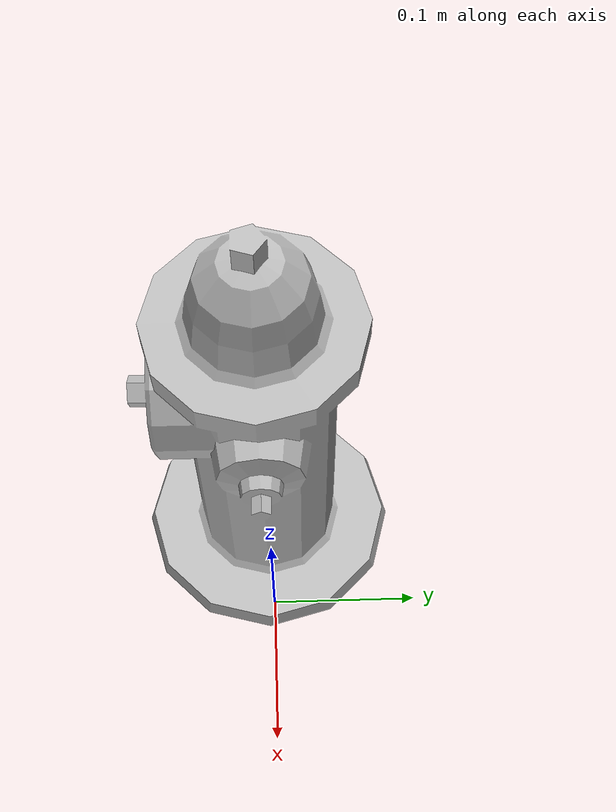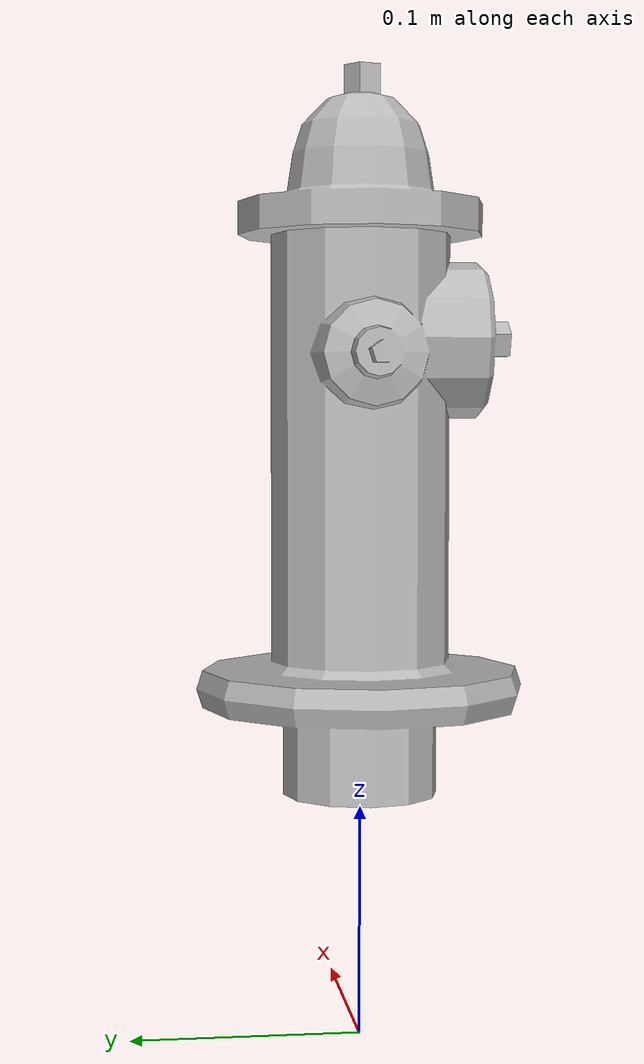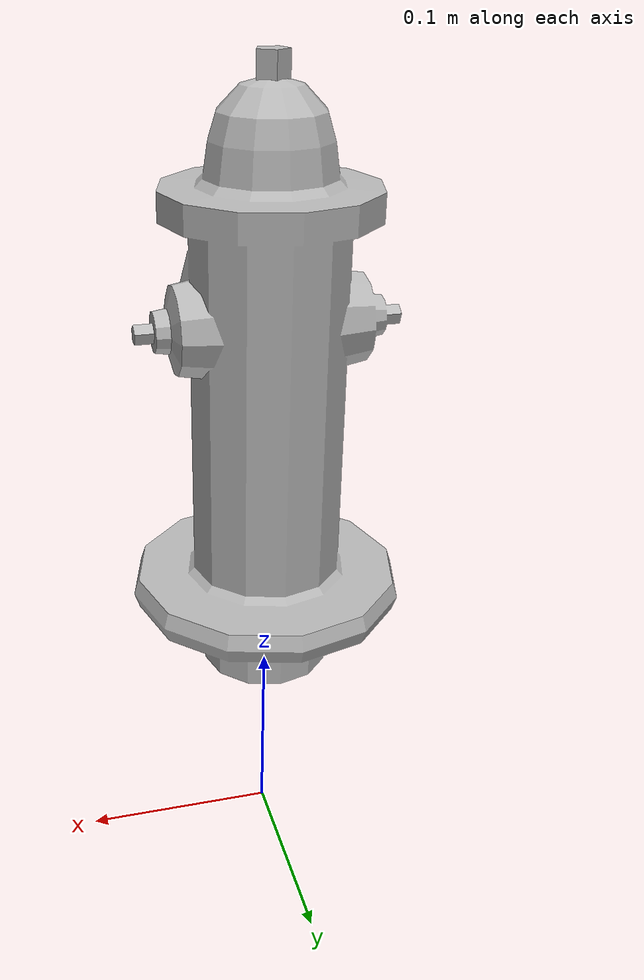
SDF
<?xml version="1.0" ?>
<sdf version="1.5">
  <model name="fire_hydrant_small">
    <static>true</static>
    <link name="link">
      <collision name="collision">
        <geometry>
          <mesh>
            <uri>model://fire_hydrant_small/meshes/fire_hydrant.dae</uri>
          </mesh>
        </geometry>
      </collision>
      <visual name="visual">
        <geometry>
          <mesh>
            <uri>model://fire_hydrant_small/meshes/fire_hydrant.dae</uri>
          </mesh>
        </geometry>
      </visual>
    </link>
  </model>
</sdf>
